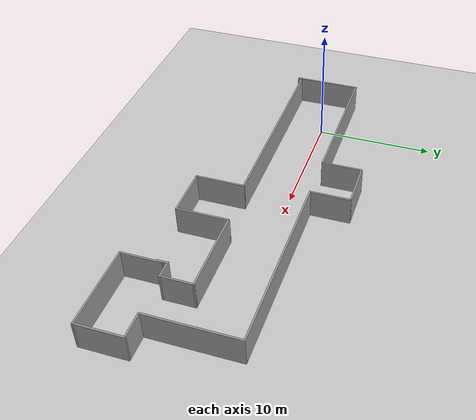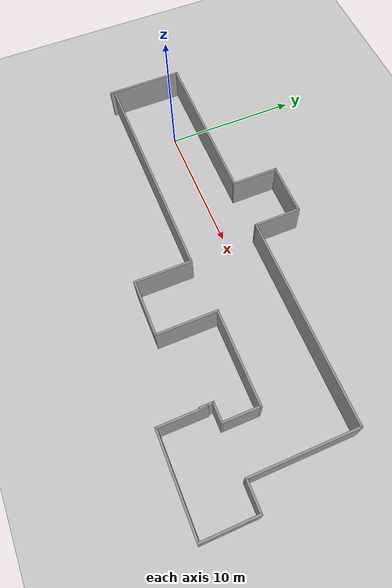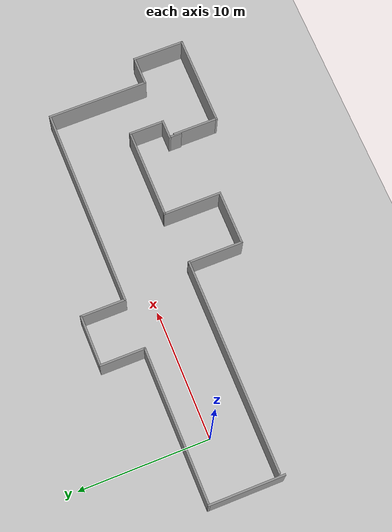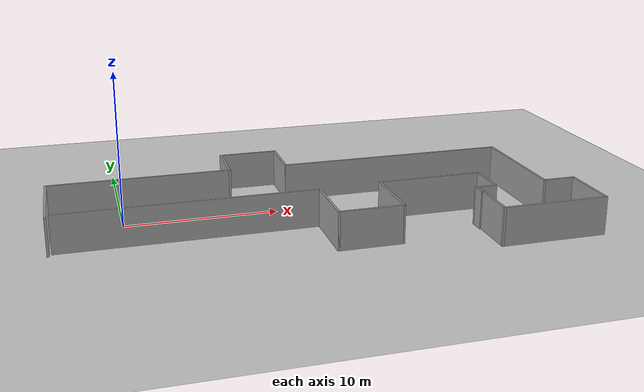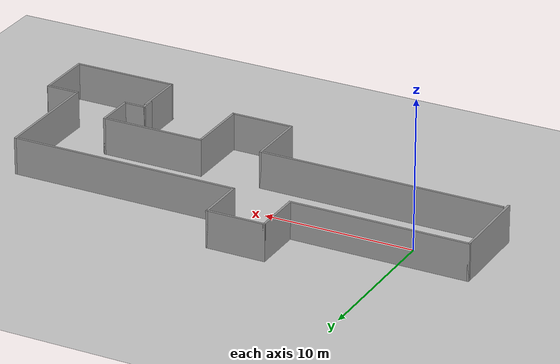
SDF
<?xml version="1.0"?>
<sdf version="1.6">
  <world name="default">

    <include>
      <uri>model://ground_plane</uri>
    </include>

    <include>
      <uri>model://sun</uri>
    </include>

    <scene>
      <shadows>false</shadows>
    </scene>

    <gui fullscreen='0'>
      <camera name='user_camera'>
        <pose frame=''>0.319654 -0.235002 9.29441 0 1.5138 0.009599</pose>
        <view_controller>orbit</view_controller>
        <projection_type>perspective</projection_type>
      </camera>
    </gui>

    <physics type="ode">
      <real_time_update_rate>1000.0</real_time_update_rate>
      <max_step_size>0.001</max_step_size>
      <real_time_factor>1</real_time_factor>
      <ode>
        <solver>
          <type>quick</type>
          <iters>150</iters>
          <precon_iters>0</precon_iters>
          <sor>1.400000</sor>
          <use_dynamic_moi_rescaling>1</use_dynamic_moi_rescaling>
        </solver>
        <constraints>
          <cfm>0.00001</cfm>
          <erp>0.2</erp>
          <contact_max_correcting_vel>2000.000000</contact_max_correcting_vel>
          <contact_surface_layer>0.01000</contact_surface_layer>
        </constraints>
      </ode>
    </physics>

    <model name="warehouse">
	<static>1</static>
	<include>
	  <uri>model://warehouse</uri>
          <pose>12.0 -2.0 0.0 0.0 0.0 0.0</pose>
	</include>
    </model>

  </world>
</sdf>

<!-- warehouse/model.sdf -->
<sdf version='1.7'>
  <model name='warehouse'>
    <pose>8.73746 -1.3318 0 0 -0 0</pose>
    <link name='Wall_11'>
      <collision name='Wall_11_Collision'>
        <geometry>
          <box>
            <size>3.5 0.15 2.5</size>
          </box>
        </geometry>
        <pose>0 0 1.25 0 -0 0</pose>
      </collision>
      <visual name='Wall_11_Visual'>
        <pose>0 0 1.25 0 -0 0</pose>
        <geometry>
          <box>
            <size>3.5 0.15 2.5</size>
          </box>
        </geometry>
        <material>
          <script>
            <uri>file://media/materials/scripts/gazebo.material</uri>
            <name>Gazebo/Grey</name>
          </script>
          <ambient>1 1 1 1</ambient>
        </material>
        <meta>
          <layer>0</layer>
        </meta>
      </visual>
      <pose>-4.725 5.725 0 0 -0 1.5708</pose>
    </link>
    <link name='Wall_12'>
      <collision name='Wall_12_Collision'>
        <geometry>
          <box>
            <size>4 0.15 2.5</size>
          </box>
        </geometry>
        <pose>0 0 1.25 0 -0 0</pose>
      </collision>
      <visual name='Wall_12_Visual'>
        <pose>0 0 1.25 0 -0 0</pose>
        <geometry>
          <box>
            <size>4 0.15 2.5</size>
          </box>
        </geometry>
        <material>
          <script>
            <uri>file://media/materials/scripts/gazebo.material</uri>
            <name>Gazebo/Grey</name>
          </script>
          <ambient>1 1 1 1</ambient>
        </material>
        <meta>
          <layer>0</layer>
        </meta>
      </visual>
      <pose>-2.8 7.4 0 0 -0 0</pose>
    </link>
    <link name='Wall_13'>
      <collision name='Wall_13_Collision'>
        <geometry>
          <box>
            <size>3.5 0.15 2.5</size>
          </box>
        </geometry>
        <pose>0 0 1.25 0 -0 0</pose>
      </collision>
      <visual name='Wall_13_Visual'>
        <pose>0 0 1.25 0 -0 0</pose>
        <geometry>
          <box>
            <size>3.5 0.15 2.5</size>
          </box>
        </geometry>
        <material>
          <script>
            <uri>file://media/materials/scripts/gazebo.material</uri>
            <name>Gazebo/Grey</name>
          </script>
          <ambient>1 1 1 1</ambient>
        </material>
        <meta>
          <layer>0</layer>
        </meta>
      </visual>
      <pose>-0.875 5.725 0 0 -0 -1.5708</pose>
    </link>
    <link name='Wall_14'>
      <collision name='Wall_14_Collision'>
        <geometry>
          <box>
            <size>15.5 0.15 2.5</size>
          </box>
        </geometry>
        <pose>0 0 1.25 0 -0 0</pose>
      </collision>
      <visual name='Wall_14_Visual'>
        <pose>0 0 1.25 0 -0 0</pose>
        <geometry>
          <box>
            <size>15.5 0.15 2.5</size>
          </box>
        </geometry>
        <material>
          <script>
            <uri>file://media/materials/scripts/gazebo.material</uri>
            <name>Gazebo/Grey</name>
          </script>
          <ambient>1 1 1 1</ambient>
        </material>
        <meta>
          <layer>0</layer>
        </meta>
      </visual>
      <pose>6.8 4.05 0 0 -0 0</pose>
    </link>
    <link name='Wall_15'>
      <collision name='Wall_15_Collision'>
        <geometry>
          <box>
            <size>7.75 0.15 2.5</size>
          </box>
        </geometry>
        <pose>0 0 1.25 0 -0 0</pose>
      </collision>
      <visual name='Wall_15_Visual'>
        <pose>0 0 1.25 0 -0 0</pose>
        <geometry>
          <box>
            <size>7.75 0.15 2.5</size>
          </box>
        </geometry>
        <material>
          <script>
            <uri>file://media/materials/scripts/gazebo.material</uri>
            <name>Gazebo/Grey</name>
          </script>
          <ambient>1 1 1 1</ambient>
        </material>
        <meta>
          <layer>0</layer>
        </meta>
      </visual>
      <pose>14.475 0.25 0 0 -0 -1.5708</pose>
    </link>
    <link name='Wall_16'>
      <collision name='Wall_16_Collision'>
        <geometry>
          <box>
            <size>2.25 0.15 2.5</size>
          </box>
        </geometry>
        <pose>0 0 1.25 0 -0 0</pose>
      </collision>
      <visual name='Wall_16_Visual'>
        <pose>0 0 1.25 0 -0 0</pose>
        <geometry>
          <box>
            <size>2.25 0.15 2.5</size>
          </box>
        </geometry>
        <material>
          <script>
            <uri>file://media/materials/scripts/gazebo.material</uri>
            <name>Gazebo/Grey</name>
          </script>
          <ambient>1 1 1 1</ambient>
        </material>
        <meta>
          <layer>0</layer>
        </meta>
      </visual>
      <pose>15.525 -3.55 0 0 -0 0</pose>
    </link>
    <link name='Wall_17'>
      <collision name='Wall_17_Collision'>
        <geometry>
          <box>
            <size>4 0.15 2.5</size>
          </box>
        </geometry>
        <pose>0 0 1.25 0 -0 0</pose>
      </collision>
      <visual name='Wall_17_Visual'>
        <pose>0 0 1.25 0 -0 0</pose>
        <geometry>
          <box>
            <size>4 0.15 2.5</size>
          </box>
        </geometry>
        <material>
          <script>
            <uri>file://media/materials/scripts/gazebo.material</uri>
            <name>Gazebo/Grey</name>
          </script>
          <ambient>1 1 1 1</ambient>
        </material>
        <meta>
          <layer>0</layer>
        </meta>
      </visual>
      <pose>16.575 -5.475 0 0 -0 -1.5708</pose>
    </link>
    <link name='Wall_18'>
      <collision name='Wall_18_Collision'>
        <geometry>
          <box>
            <size>7 0.15 2.5</size>
          </box>
        </geometry>
        <pose>0 0 1.25 0 -0 0</pose>
      </collision>
      <visual name='Wall_18_Visual'>
        <pose>0 0 1.25 0 -0 0</pose>
        <geometry>
          <box>
            <size>7 0.15 2.5</size>
          </box>
        </geometry>
        <material>
          <script>
            <uri>file://media/materials/scripts/gazebo.material</uri>
            <name>Gazebo/Grey</name>
          </script>
          <ambient>1 1 1 1</ambient>
        </material>
        <meta>
          <layer>0</layer>
        </meta>
      </visual>
      <pose>13.15 -7.4 0 0 -0 3.14159</pose>
    </link>
    <link name='Wall_19'>
      <collision name='Wall_19_Collision'>
        <geometry>
          <box>
            <size>3.5 0.15 2.5</size>
          </box>
        </geometry>
        <pose>0 0 1.25 0 -0 0</pose>
      </collision>
      <visual name='Wall_19_Visual'>
        <pose>0 0 1.25 0 -0 0</pose>
        <geometry>
          <box>
            <size>3.5 0.15 2.5</size>
          </box>
        </geometry>
        <material>
          <script>
            <uri>file://media/materials/scripts/gazebo.material</uri>
            <name>Gazebo/Grey</name>
          </script>
          <ambient>1 1 1 1</ambient>
        </material>
        <meta>
          <layer>0</layer>
        </meta>
      </visual>
      <pose>9.725 -5.725 0 0 -0 1.5708</pose>
    </link>
    <link name='Wall_28'>
      <collision name='Wall_28_Collision'>
        <geometry>
          <box>
            <size>16.5 0.15 2.5</size>
          </box>
        </geometry>
        <pose>0 0 1.25 0 -0 0</pose>
      </collision>
      <visual name='Wall_28_Visual'>
        <pose>0 0 1.25 0 -0 0</pose>
        <geometry>
          <box>
            <size>16.5 0.15 2.5</size>
          </box>
        </geometry>
        <material>
          <script>
            <uri>file://media/materials/scripts/gazebo.material</uri>
            <name>Gazebo/Grey</name>
          </script>
          <ambient>1 1 1 1</ambient>
        </material>
        <meta>
          <layer>0</layer>
        </meta>
      </visual>
      <pose>-8.13879 -1.26237 0 0 -0 0</pose>
    </link>
    <link name='Wall_29'>
      <collision name='Wall_29_Collision'>
        <geometry>
          <box>
            <size>4.25 0.15 2.5</size>
          </box>
        </geometry>
        <pose>0 0 1.25 0 -0 0</pose>
      </collision>
      <visual name='Wall_29_Visual'>
        <pose>0 0 1.25 0 -0 0</pose>
        <geometry>
          <box>
            <size>4.25 0.15 2.5</size>
          </box>
        </geometry>
        <material>
          <script>
            <uri>file://media/materials/scripts/gazebo.material</uri>
            <name>Gazebo/Grey</name>
          </script>
          <ambient>1 1 1 1</ambient>
        </material>
        <meta>
          <layer>0</layer>
        </meta>
      </visual>
      <pose>0.036209 -3.31237 0 0 -0 -1.5708</pose>
    </link>
    <link name='Wall_30'>
      <collision name='Wall_30_Collision'>
        <geometry>
          <box>
            <size>4.25 0.15 2.5</size>
          </box>
        </geometry>
        <pose>0 0 1.25 0 -0 0</pose>
      </collision>
      <visual name='Wall_30_Visual'>
        <pose>0 0 1.25 0 -0 0</pose>
        <geometry>
          <box>
            <size>4.25 0.15 2.5</size>
          </box>
        </geometry>
        <material>
          <script>
            <uri>file://media/materials/scripts/gazebo.material</uri>
            <name>Gazebo/Grey</name>
          </script>
          <ambient>1 1 1 1</ambient>
        </material>
        <meta>
          <layer>0</layer>
        </meta>
      </visual>
      <pose>2.08621 -5.36237 0 0 -0 0</pose>
    </link>
    <link name='Wall_31'>
      <collision name='Wall_31_Collision'>
        <geometry>
          <box>
            <size>4.5 0.15 2.5</size>
          </box>
        </geometry>
        <pose>0 0 1.25 0 -0 0</pose>
      </collision>
      <visual name='Wall_31_Visual'>
        <pose>0 0 1.25 0 -0 0</pose>
        <geometry>
          <box>
            <size>4.5 0.15 2.5</size>
          </box>
        </geometry>
        <material>
          <script>
            <uri>file://media/materials/scripts/gazebo.material</uri>
            <name>Gazebo/Grey</name>
          </script>
          <ambient>1 1 1 1</ambient>
        </material>
        <meta>
          <layer>0</layer>
        </meta>
      </visual>
      <pose>4.13621 -3.18737 0 0 -0 1.5708</pose>
    </link>
    <link name='Wall_32'>
      <collision name='Wall_32_Collision'>
        <geometry>
          <box>
            <size>7 0.15 2.5</size>
          </box>
        </geometry>
        <pose>0 0 1.25 0 -0 0</pose>
      </collision>
      <visual name='Wall_32_Visual'>
        <pose>0 0 1.25 0 -0 0</pose>
        <geometry>
          <box>
            <size>7 0.15 2.5</size>
          </box>
        </geometry>
        <material>
          <script>
            <uri>file://media/materials/scripts/gazebo.material</uri>
            <name>Gazebo/Grey</name>
          </script>
          <ambient>1 1 1 1</ambient>
        </material>
        <meta>
          <layer>0</layer>
        </meta>
      </visual>
      <pose>7.56121 -1.01237 0 0 -0 0</pose>
    </link>
    <link name='Wall_33'>
      <collision name='Wall_33_Collision'>
        <geometry>
          <box>
            <size>2.75 0.15 2.5</size>
          </box>
        </geometry>
        <pose>0 0 1.25 0 -0 0</pose>
      </collision>
      <visual name='Wall_33_Visual'>
        <pose>0 0 1.25 0 -0 0</pose>
        <geometry>
          <box>
            <size>2.75 0.15 2.5</size>
          </box>
        </geometry>
        <material>
          <script>
            <uri>file://media/materials/scripts/gazebo.material</uri>
            <name>Gazebo/Grey</name>
          </script>
          <ambient>1 1 1 1</ambient>
        </material>
        <meta>
          <layer>0</layer>
        </meta>
      </visual>
      <pose>10.9862 -2.31237 0 0 -0 -1.5708</pose>
    </link>
    <link name='Wall_34'>
      <collision name='Wall_34_Collision'>
        <geometry>
          <box>
            <size>1.5 0.15 2.5</size>
          </box>
        </geometry>
        <pose>0 0 1.25 0 -0 0</pose>
      </collision>
      <visual name='Wall_34_Visual'>
        <pose>0 0 1.25 0 -0 0</pose>
        <geometry>
          <box>
            <size>1.5 0.15 2.5</size>
          </box>
        </geometry>
        <material>
          <script>
            <uri>file://media/materials/scripts/gazebo.material</uri>
            <name>Gazebo/Grey</name>
          </script>
          <ambient>1 1 1 1</ambient>
        </material>
        <meta>
          <layer>0</layer>
        </meta>
      </visual>
      <pose>10.3112 -3.61237 0 0 -0 3.14159</pose>
    </link>
    <link name='Wall_35'>
      <collision name='Wall_35_Collision'>
        <geometry>
          <box>
            <size>1 0.15 2.5</size>
          </box>
        </geometry>
        <pose>0 0 1.25 0 -0 0</pose>
      </collision>
      <visual name='Wall_35_Visual'>
        <pose>0 0 1.25 0 -0 0</pose>
        <geometry>
          <box>
            <size>1 0.15 2.5</size>
          </box>
        </geometry>
        <material>
          <script>
            <uri>file://media/materials/scripts/gazebo.material</uri>
            <name>Gazebo/Grey</name>
          </script>
          <ambient>1 1 1 1</ambient>
        </material>
        <meta>
          <layer>0</layer>
        </meta>
      </visual>
      <pose>9.63621 -4.03737 0 0 -0 -1.5708</pose>
    </link>
    <link name='Wall_38'>
      <collision name='Wall_38_Collision'>
        <geometry>
          <box>
            <size>5.75 0.15 2.5</size>
          </box>
        </geometry>
        <pose>0 0 1.25 0 -0 0</pose>
      </collision>
      <visual name='Wall_38_Visual'>
        <pose>0 0 1.25 0 -0 0</pose>
        <geometry>
          <box>
            <size>5.75 0.15 2.5</size>
          </box>
        </geometry>
        <material>
          <script>
            <uri>file://media/materials/scripts/gazebo.material</uri>
            <name>Gazebo/Grey</name>
          </script>
          <ambient>1 1 1 1</ambient>
        </material>
        <meta>
          <layer>0</layer>
        </meta>
      </visual>
      <pose>-16.575 1.25 0 0 -0 -1.5708</pose>
    </link>
    <link name='Wall_7'>
      <collision name='Wall_7_Collision'>
        <geometry>
          <box>
            <size>12 0.15 2.5</size>
          </box>
        </geometry>
        <pose>0 0 1.25 0 -0 0</pose>
      </collision>
      <visual name='Wall_7_Visual'>
        <pose>0 0 1.25 0 -0 0</pose>
        <geometry>
          <box>
            <size>12 0.15 2.5</size>
          </box>
        </geometry>
        <material>
          <script>
            <uri>file://media/materials/scripts/gazebo.material</uri>
            <name>Gazebo/Grey</name>
          </script>
          <ambient>1 1 1 1</ambient>
        </material>
        <meta>
          <layer>0</layer>
        </meta>
      </visual>
      <pose>-10.65 4.05 0 0 -0 0</pose>
    </link>
    <static>1</static>
  </model>
</sdf>
